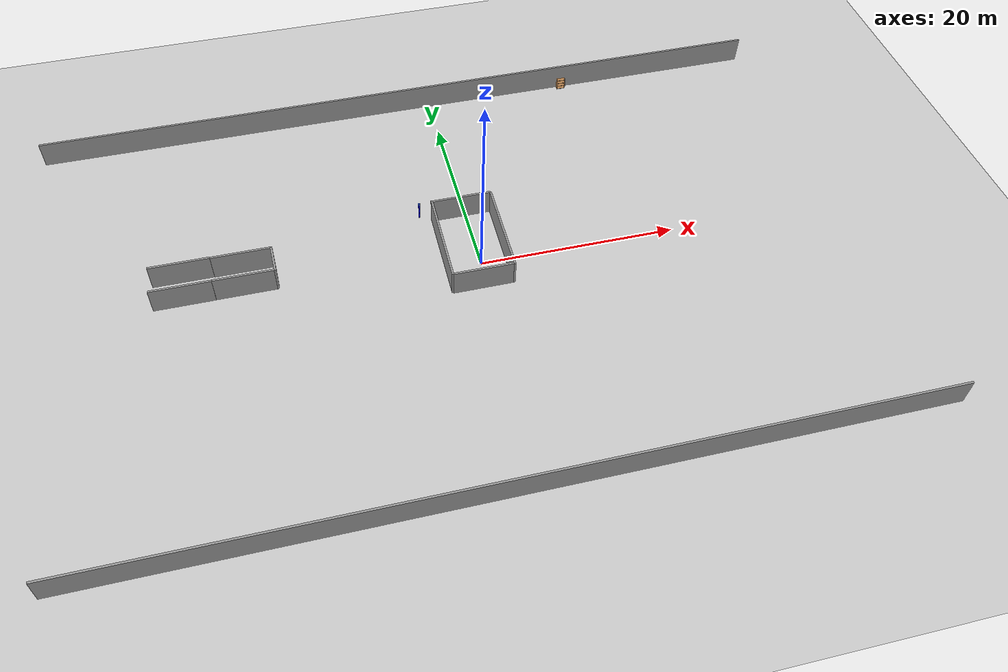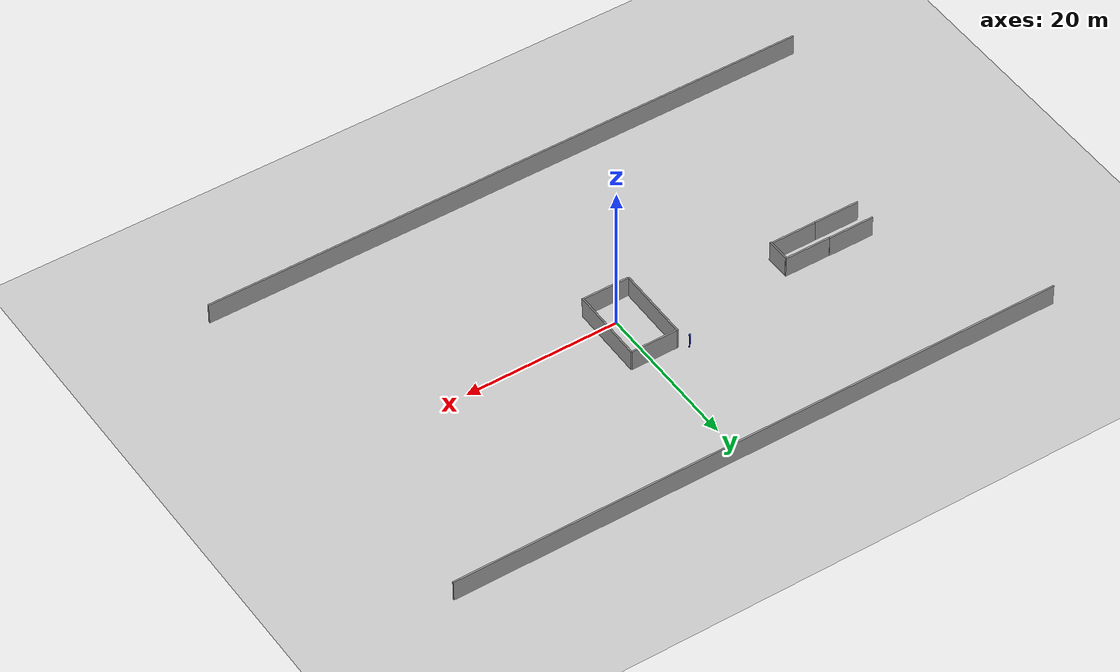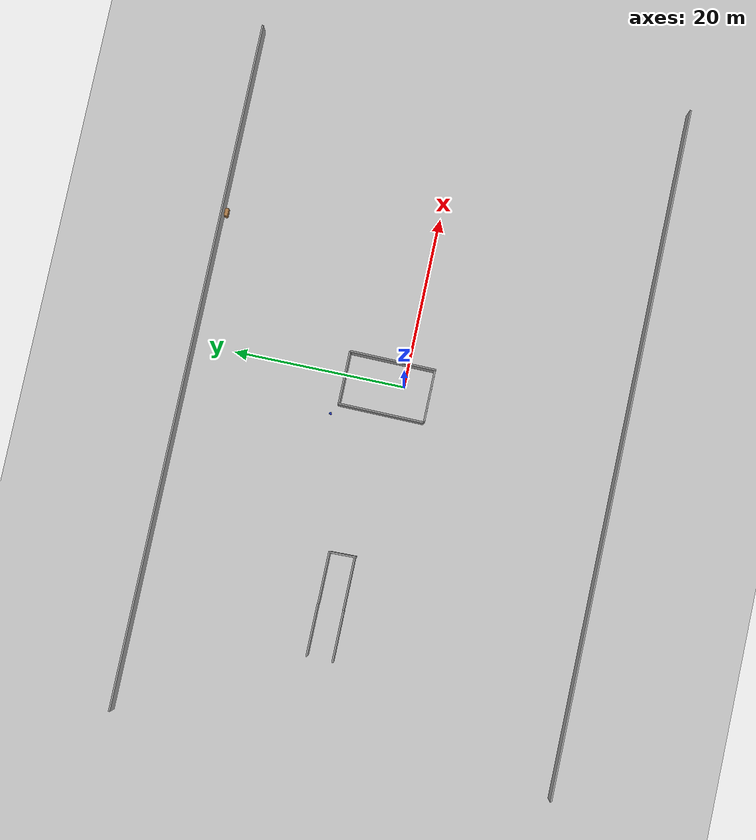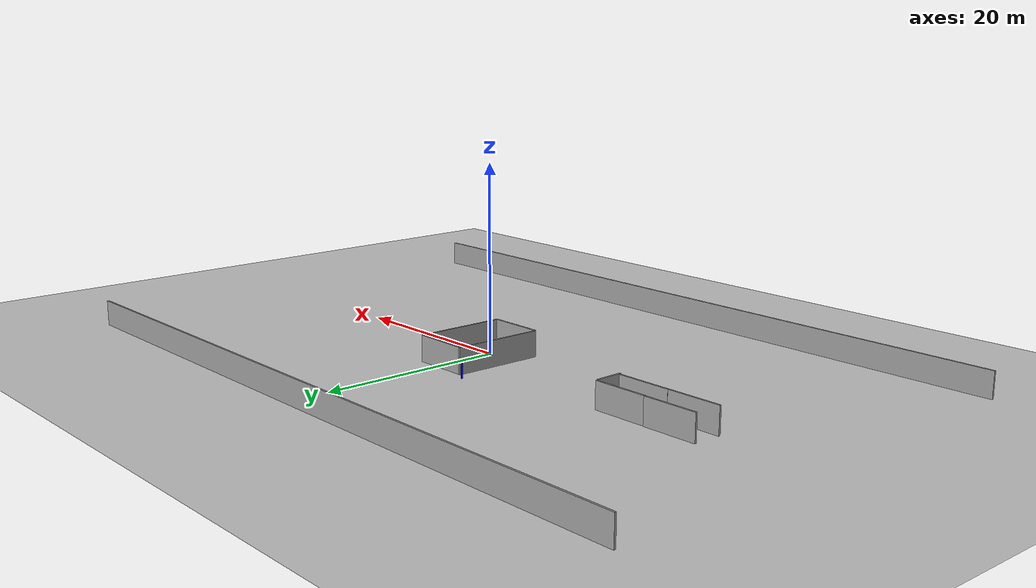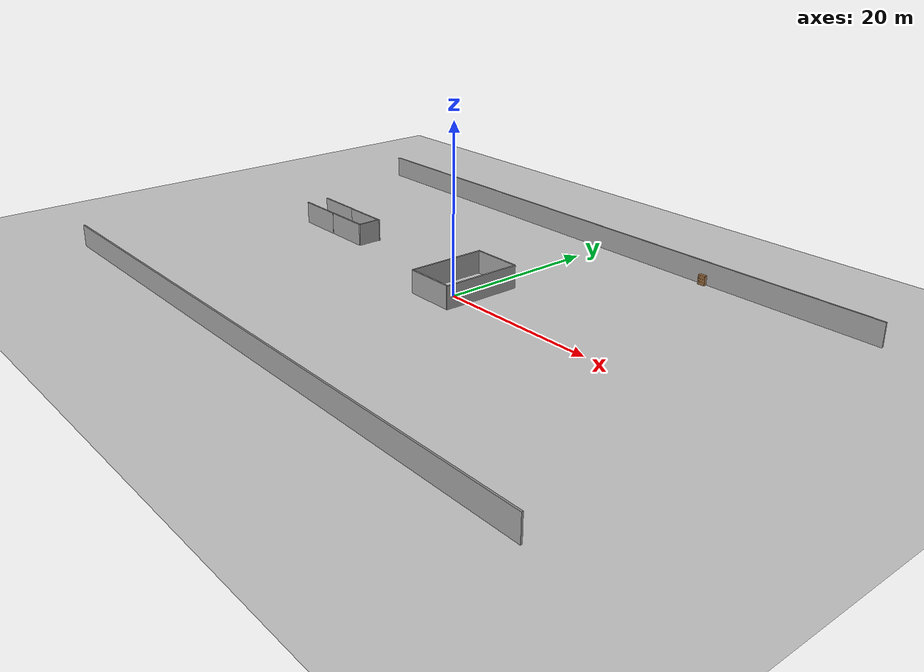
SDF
<sdf version="1.7">
 <world name="default">
  <model name="ground_plane">
   <static>1</static>
   <link name="link">
    <collision name="collision">
     <geometry><plane><normal>0 0 1</normal><size>100 100</size></plane></geometry>
     <surface>
      <contact><collide_bitmask>65535</collide_bitmask></contact>
      <friction><ode><mu>100</mu><mu2>50</mu2></ode></friction>
     </surface>
    </collision>
    <visual name="visual">
     <cast_shadows>0</cast_shadows>
     <geometry><plane><normal>0 0 1</normal><size>100 100</size></plane></geometry>
     <material>
      <script><uri>file://media/materials/scripts/gazebo.material</uri><name>Gazebo/Grey</name></script>
     </material>
    </visual>
   </link>
  </model>
  <model name="grey_wall_long_2">
   <static>1</static>
   <link name="link">
    <pose>0 0 1.4 0 -0 0</pose>
    <collision name="collision"><geometry><box><size>80 0.2 2.8</size></box></geometry></collision>
    <visual name="visual">
     <cast_shadows>0</cast_shadows>
     <geometry><box><size>80 0.2 2.8</size></box></geometry>
     <material>
      <script>
       <uri>model://grey_wall_long_2/materials/scripts</uri>
       <uri>model://grey_wall_long_2/materials/textures</uri>
       <name>vrc/grey_wall_long_2</name>
      </script>
     </material>
    </visual>
   </link>
   <pose>-2.0449 -25.5677 0 0 -0 0</pose>
  </model>
  <model name="grey_wall_long_2_clone">
   <static>1</static>
   <link name="link">
    <pose>0 0 1.4 0 -0 0</pose>
    <collision name="collision"><geometry><box><size>80 0.2 2.8</size></box></geometry></collision>
    <visual name="visual">
     <cast_shadows>0</cast_shadows>
     <geometry><box><size>80 0.2 2.8</size></box></geometry>
     <material>
      <script>
       <uri>model://grey_wall_long_2/materials/scripts</uri>
       <uri>model://grey_wall_long_2/materials/textures</uri>
       <name>vrc/grey_wall_long_2</name>
      </script>
     </material>
    </visual>
   </link>
   <pose>-2.52951 24.6852 0 0 -0 0</pose>
  </model>
  <model name="grey_wall_short_2">
   <static>1</static>
   <link name="link">
    <pose>0 0 1.4 0 -0 0</pose>
    <collision name="collision"><geometry><box><size>10 0.2 2.8</size></box></geometry></collision>
    <visual name="visual">
     <cast_shadows>0</cast_shadows>
     <geometry><box><size>10 0.2 2.8</size></box></geometry>
     <material>
      <script>
       <uri>model://grey_wall_short_2/materials/scripts</uri>
       <uri>model://grey_wall_short_2/materials/textures</uri>
       <name>vrc/grey_wall_short_2</name>
      </script>
     </material>
    </visual>
   </link>
   <pose>-3.54745 2.00518 0 0 -0 1.56066</pose>
  </model>
  <model name="grey_wall_media">
   <static>1</static>
   <link name="link">
    <pose>0 0 1.4 0 -0 0</pose>
    <collision name="collision"><geometry><box><size>6 0.2 2.8</size></box></geometry></collision>
    <visual name="visual">
     <cast_shadows>0</cast_shadows>
     <geometry><box><size>6 0.2 2.8</size></box></geometry>
     <material>
      <script>
       <uri>model://grey_wall_media/materials/scripts</uri>
       <uri>model://grey_wall_media/materials/textures</uri>
       <name>vrc/grey_wall_media</name>
      </script>
     </material>
    </visual>
   </link>
   <pose>-29 4.42421 0.00987 0 -0 0</pose>
  </model>
  <model name="grey_wall_media_clone">
   <static>1</static>
   <link name="link">
    <pose>0 0 1.4 0 -0 0</pose>
    <collision name="collision"><geometry><box><size>6 0.2 2.8</size></box></geometry></collision>
    <visual name="visual">
     <cast_shadows>0</cast_shadows>
     <geometry><box><size>6 0.2 2.8</size></box></geometry>
     <material>
      <script>
       <uri>model://grey_wall_media/materials/scripts</uri>
       <uri>model://grey_wall_media/materials/textures</uri>
       <name>vrc/grey_wall_media</name>
      </script>
     </material>
    </visual>
   </link>
   <pose>-23.0062 4.38382 0.00987 0 -0 0</pose>
  </model>
  <model name="grey_wall_short_clone">
   <static>1</static>
   <link name="link">
    <pose>0 0 1.4 0 -0 0</pose>
    <collision name="collision"><geometry><box><size>3 0.2 2.8</size></box></geometry></collision>
    <visual name="visual">
     <cast_shadows>0</cast_shadows>
     <geometry><box><size>3 0.2 2.8</size></box></geometry>
     <material>
      <script>
       <uri>model://grey_wall_short/materials/scripts</uri>
       <uri>model://grey_wall_short/materials/textures</uri>
       <name>vrc/grey_wall_short</name>
      </script>
     </material>
    </visual>
   </link>
   <pose>-20.0584 2.81156 0.06642 0 0 -1.5524</pose>
  </model>
  <model name="grey_wall_media_clone_0">
   <static>1</static>
   <link name="link">
    <pose>0 0 1.4 0 -0 0</pose>
    <collision name="collision"><geometry><box><size>6 0.2 2.8</size></box></geometry></collision>
    <visual name="visual">
     <cast_shadows>0</cast_shadows>
     <geometry><box><size>6 0.2 2.8</size></box></geometry>
     <material>
      <script>
       <uri>model://grey_wall_media/materials/scripts</uri>
       <uri>model://grey_wall_media/materials/textures</uri>
       <name>vrc/grey_wall_media</name>
      </script>
     </material>
    </visual>
   </link>
   <pose>-29.0686 1.44223 0.00987 0 -0 0</pose>
  </model>
  <model name="grey_wall_media_clone_1">
   <static>1</static>
   <link name="link">
    <pose>0 0 1.4 0 -0 0</pose>
    <collision name="collision"><geometry><box><size>6 0.2 2.8</size></box></geometry></collision>
    <visual name="visual">
     <cast_shadows>0</cast_shadows>
     <geometry><box><size>6 0.2 2.8</size></box></geometry>
     <material>
      <script>
       <uri>model://grey_wall_media/materials/scripts</uri>
       <uri>model://grey_wall_media/materials/textures</uri>
       <name>vrc/grey_wall_media</name>
      </script>
     </material>
    </visual>
   </link>
   <pose>-23.1024 1.45669 0.00987 0 -0 0</pose>
  </model>
  <model name="grey_wall_media_clone_2">
   <static>1</static>
   <link name="link">
    <pose>0 0 1.4 0 -0 0</pose>
    <collision name="collision"><geometry><box><size>6 0.2 2.8</size></box></geometry></collision>
    <visual name="visual">
     <cast_shadows>0</cast_shadows>
     <geometry><box><size>6 0.2 2.8</size></box></geometry>
     <material>
      <script>
       <uri>model://grey_wall_media/materials/scripts</uri>
       <uri>model://grey_wall_media/materials/textures</uri>
       <name>vrc/grey_wall_media</name>
      </script>
     </material>
    </visual>
   </link>
   <pose>-0.524154 -3.00144 0.00987 0 -0 0</pose>
  </model>
  <model name="grey_wall_media_clone_3">
   <static>1</static>
   <link name="link">
    <pose>0 0 1.4 0 -0 0</pose>
    <collision name="collision"><geometry><box><size>6 0.2 2.8</size></box></geometry></collision>
    <visual name="visual">
     <cast_shadows>0</cast_shadows>
     <geometry><box><size>6 0.2 2.8</size></box></geometry>
     <material>
      <script>
       <uri>model://grey_wall_media/materials/scripts</uri>
       <uri>model://grey_wall_media/materials/textures</uri>
       <name>vrc/grey_wall_media</name>
      </script>
     </material>
    </visual>
   </link>
   <pose>-0.415049 6.87765 0.00987 0 -0 0</pose>
  </model>
  <model name="grey_wall_short_2_clone">
   <static>1</static>
   <link name="link">
    <pose>0 0 1.4 0 -0 0</pose>
    <collision name="collision"><geometry><box><size>10 0.2 2.8</size></box></geometry></collision>
    <visual name="visual">
     <cast_shadows>0</cast_shadows>
     <geometry><box><size>10 0.2 2.8</size></box></geometry>
     <material>
      <script>
       <uri>model://grey_wall_short_2/materials/scripts</uri>
       <uri>model://grey_wall_short_2/materials/textures</uri>
       <name>vrc/grey_wall_short_2</name>
      </script>
     </material>
    </visual>
   </link>
   <pose>2.57651 1.88532 0 0 -0 1.56066</pose>
  </model>
  <model name="Bookshelf_0_clone_2">
   <static>1</static>
   <link name="link">
    <inertial><mass>1</mass></inertial>
    <collision name="back">
     <pose>0 0.005 0.6 0 -0 0</pose>
     <geometry><box><size>0.9 0.01 1.2</size></box></geometry>
    </collision>
    <visual name="visual1">
     <pose>0 0.005 0.6 0 -0 0</pose>
     <geometry><box><size>0.9 0.01 1.2</size></box></geometry>
     <material>
      <diffuse>1 1 1 1</diffuse>
      <script><uri>file://media/materials/scripts/gazebo.material</uri><name>Gazebo/Wood</name></script>
      <pbr><metal><albedo_map>model://Bookshelf/bookshelf_diffuse.jpg</albedo_map></metal></pbr>
     </material>
    </visual>
    <collision name="left_side">
     <pose>0.45 -0.195 0.6 0 -0 0</pose>
     <geometry><box><size>0.02 0.4 1.2</size></box></geometry>
    </collision>
    <visual name="visual2">
     <pose>0.45 -0.195 0.6 0 -0 0</pose>
     <geometry><box><size>0.02 0.4 1.2</size></box></geometry>
     <material>
      <diffuse>1 1 1 1</diffuse>
      <script><uri>file://media/materials/scripts/gazebo.material</uri><name>Gazebo/Wood</name></script>
      <pbr><metal><albedo_map>model://Bookshelf/bookshelf_diffuse.jpg</albedo_map></metal></pbr>
     </material>
    </visual>
    <collision name="right_side">
     <pose>-0.45 -0.195 0.6 0 -0 0</pose>
     <geometry><box><size>0.02 0.4 1.2</size></box></geometry>
    </collision>
    <visual name="visual3">
     <pose>-0.45 -0.195 0.6 0 -0 0</pose>
     <geometry><box><size>0.02 0.4 1.2</size></box></geometry>
     <material>
      <diffuse>1 1 1 1</diffuse>
      <script><uri>file://media/materials/scripts/gazebo.material</uri><name>Gazebo/Wood</name></script>
      <pbr><metal><albedo_map>model://Bookshelf/bookshelf_diffuse.jpg</albedo_map></metal></pbr>
     </material>
    </visual>
    <collision name="bottom">
     <pose>0 -0.195 0.03 0 -0 0</pose>
     <geometry><box><size>0.88 0.4 0.06</size></box></geometry>
    </collision>
    <visual name="visual4">
     <pose>0 -0.195 0.03 0 -0 0</pose>
     <geometry><box><size>0.88 0.4 0.06</size></box></geometry>
     <material>
      <diffuse>1 1 1 1</diffuse>
      <script><uri>file://media/materials/scripts/gazebo.material</uri><name>Gazebo/Wood</name></script>
      <pbr><metal><albedo_map>model://Bookshelf/bookshelf_diffuse.jpg</albedo_map></metal></pbr>
     </material>
    </visual>
    <collision name="top">
     <pose>0 -0.195 1.19 0 -0 0</pose>
     <geometry><box><size>0.88 0.4 0.02</size></box></geometry>
    </collision>
    <visual name="visual5">
     <pose>0 -0.195 1.19 0 -0 0</pose>
     <geometry><box><size>0.88 0.4 0.02</size></box></geometry>
     <material>
      <diffuse>1 1 1 1</diffuse>
      <script><uri>file://media/materials/scripts/gazebo.material</uri><name>Gazebo/Wood</name></script>
      <pbr><metal><albedo_map>model://Bookshelf/bookshelf_diffuse.jpg</albedo_map></metal></pbr>
     </material>
    </visual>
    <collision name="low_shelf">
     <pose>0 -0.195 0.43 0 -0 0</pose>
     <geometry><box><size>0.88 0.4 0.02</size></box></geometry>
    </collision>
    <visual name="visual6">
     <pose>0 -0.195 0.43 0 -0 0</pose>
     <geometry><box><size>0.88 0.4 0.02</size></box></geometry>
     <material>
      <diffuse>1 1 1 1</diffuse>
      <script><uri>file://media/materials/scripts/gazebo.material</uri><name>Gazebo/Wood</name></script>
      <pbr><metal><albedo_map>model://Bookshelf/bookshelf_diffuse.jpg</albedo_map></metal></pbr>
     </material>
    </visual>
    <collision name="high_shelf">
     <pose>0 -0.195 0.8 0 -0 0</pose>
     <geometry><box><size>0.88 0.4 0.02</size></box></geometry>
    </collision>
    <visual name="visual7">
     <pose>0 -0.195 0.8 0 -0 0</pose>
     <geometry><box><size>0.88 0.4 0.02</size></box></geometry>
     <material>
      <diffuse>1 1 1 1</diffuse>
      <script><uri>file://media/materials/scripts/gazebo.material</uri><name>Gazebo/Wood</name></script>
      <pbr><metal><albedo_map>model://Bookshelf/bookshelf_diffuse.jpg</albedo_map></metal></pbr>
     </material>
    </visual>
   </link>
   <pose>15.566 24.5124 0 0 -0 0</pose>
  </model>
  <model name="UWB_2">
   <link name="link_1">
    <inertial>
     <mass>1</mass>
     <inertia><ixx>0.145833</ixx><ixy>0</ixy><ixz>0</ixz><iyy>0.145833</iyy><iyz>0</iyz><izz>0.125</izz></inertia>
    </inertial>
    <pose>0 0 0.95 0 -0 0</pose>
    <visual name="visual">
     <geometry><cylinder><radius>0.08</radius><length>1.9</length></cylinder></geometry>
     <material>
      <lighting>1</lighting>
      <script><uri>file://media/materials/scripts/gazebo.material</uri><name>Gazebo/Grey</name></script>
      <shader type="pixel"><normal_map>__default__</normal_map></shader>
      <ambient>0 0 1 1</ambient>
      <diffuse>0 0 1 1</diffuse>
      <specular>0 0 1 1</specular>
      <emissive>0 0 1 1</emissive>
     </material>
    </visual>
    <collision name="collision">
     <geometry><cylinder><radius>0.08</radius><length>1.9</length></cylinder></geometry>
     <surface>
      <friction>
       <ode><mu>1</mu><mu2>1</mu2><fdir1>0 0 0</fdir1><slip1>0</slip1><slip2>0</slip2></ode>
       <torsional>
        <coefficient>1</coefficient>
        <patch_radius>0</patch_radius>
        <surface_radius>0</surface_radius>
        <use_patch_radius>1</use_patch_radius>
        <ode><slip>0</slip></ode>
       </torsional>
      </friction>
      <bounce><restitution_coefficient>0</restitution_coefficient><threshold>1e+06</threshold></bounce>
      <contact>
       <collide_without_contact>0</collide_without_contact>
       <collide_without_contact_bitmask>1</collide_without_contact_bitmask>
       <collide_bitmask>1</collide_bitmask>
       <ode>
        <soft_cfm>0</soft_cfm>
        <soft_erp>0.2</soft_erp>
        <kp>1e+13</kp>
        <kd>1</kd>
        <max_vel>0.01</max_vel>
        <min_depth>0</min_depth>
       </ode>
       <bullet>
        <split_impulse>1</split_impulse>
        <split_impulse_penetration_threshold>-0.01</split_impulse_penetration_threshold>
        <soft_cfm>0</soft_cfm>
        <soft_erp>0.2</soft_erp>
        <kp>1e+13</kp>
        <kd>1</kd>
       </bullet>
      </contact>
     </surface>
    </collision>
   </link>
   <link name="link_2">
    <inertial>
     <mass>1</mass>
     <inertia>
      <ixx>0.166667</ixx>
      <ixy>0</ixy>
      <ixz>0</ixz>
      <iyy>0.166667</iyy>
      <iyz>0</iyz>
      <izz>0.166667</izz>
     </inertia>
    </inertial>
    <pose>0 0 1.9 0 -0 0</pose>
    <visual name="visual">
     <geometry><box><size>0.2 0.2 0.2</size></box></geometry>
     <material>
      <lighting>1</lighting>
      <script><uri>file://media/materials/scripts/gazebo.material</uri><name>Gazebo/Blue</name></script>
      <shader type="pixel"><normal_map>__default__</normal_map></shader>
      <ambient>1 0 0 1</ambient>
      <diffuse>1 0 0 1</diffuse>
      <specular>1 0 0 1</specular>
      <emissive>1 0 0 1</emissive>
     </material>
    </visual>
    <collision name="collision">
     <geometry><box><size>0.2 0.2 0.2</size></box></geometry>
     <surface>
      <friction>
       <ode><mu>1</mu><mu2>1</mu2><fdir1>0 0 0</fdir1><slip1>0</slip1><slip2>0</slip2></ode>
       <torsional>
        <coefficient>1</coefficient>
        <patch_radius>0</patch_radius>
        <surface_radius>0</surface_radius>
        <use_patch_radius>1</use_patch_radius>
        <ode><slip>0</slip></ode>
       </torsional>
      </friction>
      <bounce><restitution_coefficient>0</restitution_coefficient><threshold>1e+06</threshold></bounce>
      <contact>
       <collide_without_contact>0</collide_without_contact>
       <collide_without_contact_bitmask>1</collide_without_contact_bitmask>
       <collide_bitmask>1</collide_bitmask>
       <ode>
        <soft_cfm>0</soft_cfm>
        <soft_erp>0.2</soft_erp>
        <kp>1e+13</kp>
        <kd>1</kd>
        <max_vel>0.01</max_vel>
        <min_depth>0</min_depth>
       </ode>
       <bullet>
        <split_impulse>1</split_impulse>
        <split_impulse_penetration_threshold>-0.01</split_impulse_penetration_threshold>
        <soft_cfm>0</soft_cfm>
        <soft_erp>0.2</soft_erp>
        <kp>1e+13</kp>
        <kd>1</kd>
       </bullet>
      </contact>
     </surface>
    </collision>
   </link>
   <static>1</static>
   <pose>-4.69818 7.62826 0 0 -0 0</pose>
  </model>
 </world>
</sdf>
